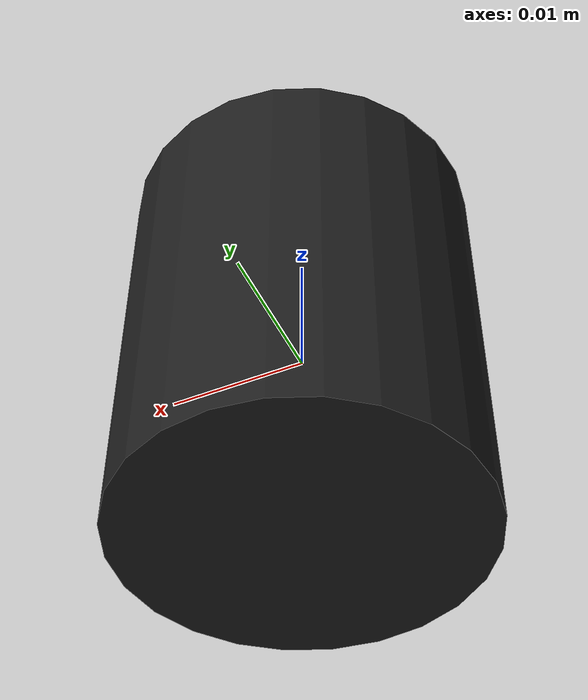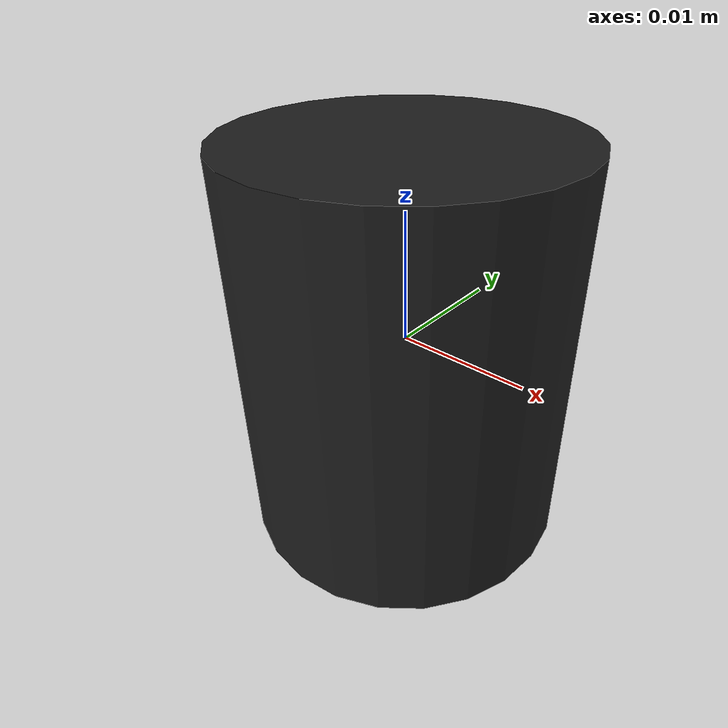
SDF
<?xml version='1.0'?>
<sdf version='1.6'>
  <model name='KnightBlack'>
    <link name='knightBlack_link'>
      <pose frame=''>0 0 0 0 0 0</pose>
      <inertial>
        <mass>0.000975</mass>
        <inertia>
          <ixx>3.91e-06</ixx>
          <ixy>0</ixy>
          <ixz>0</ixz>
          <iyy>3.91e-06</iyy>
          <iyz>0</iyz>
          <izz>3.91e-06</izz>
        </inertia>
        <pose frame=''>0 0 0 0 -0 0</pose>
      </inertial>
      <gravity>1</gravity>
      <self_collide>0</self_collide>
      <kinematic>0</kinematic>
      <enable_wind>0</enable_wind>
      <visual name='visual'>
        <pose frame=''>0 0 0 0 -0 0</pose>
        <geometry>
          <cylinder>
            <radius>0.0125</radius>
            <length>0.03</length>
          </cylinder>
        </geometry>
        <material>
          <lighting>1</lighting>
          <script>
            <uri>file://media/materials/scripts/gazebo.material</uri>
            <name>Gazebo/Black</name>
          </script>
          <shader type='pixel'>
            <normal_map>__default__</normal_map>
          </shader>
          <ambient>0 0 0 1</ambient>
          <diffuse>0 0 0 1</diffuse>
          <specular>0.1 0.1 0.1 1</specular>
          <emissive>0 0 0 1</emissive>
        </material>
        <cast_shadows>1</cast_shadows>
        <transparency>0</transparency>
      </visual>
      <collision name='collision'>
        <laser_retro>0</laser_retro>
        <max_contacts>10</max_contacts>
        <pose frame=''>0 0 0 0 -0 0</pose>
        <geometry>
          <cylinder>
            <radius>0.0125</radius>
            <length>0.03</length>
          </cylinder>
        </geometry>
        <surface>
          <friction>
            <ode>
              <mu>1</mu>
              <mu2>1</mu2>
              <fdir1>0 0 0</fdir1>
              <slip1>0</slip1>
              <slip2>0</slip2>
            </ode>
            <torsional>
              <coefficient>1</coefficient>
              <patch_radius>0</patch_radius>
              <surface_radius>0</surface_radius>
              <use_patch_radius>1</use_patch_radius>
              <ode>
                <slip>0</slip>
              </ode>
            </torsional>
          </friction>
          <bounce>
            <restitution_coefficient>0</restitution_coefficient>
            <threshold>1e+06</threshold>
          </bounce>
          <contact>
            <collide_without_contact>0</collide_without_contact>
            <collide_without_contact_bitmask>1</collide_without_contact_bitmask>
            <collide_bitmask>1</collide_bitmask>
            <ode>
              <soft_cfm>0</soft_cfm>
              <soft_erp>0.2</soft_erp>
              <kp>1e+13</kp>
              <kd>1</kd>
              <max_vel>0.01</max_vel>
              <min_depth>0</min_depth>
            </ode>
            <bullet>
              <split_impulse>1</split_impulse>
              <split_impulse_penetration_threshold>-0.01</split_impulse_penetration_threshold>
              <soft_cfm>0</soft_cfm>
              <soft_erp>0.2</soft_erp>
              <kp>1e+13</kp>
              <kd>1</kd>
            </bullet>
          </contact>
        </surface>
      </collision>
    </link>
    <static>0</static>
    <allow_auto_disable>1</allow_auto_disable>
  </model>
</sdf>
